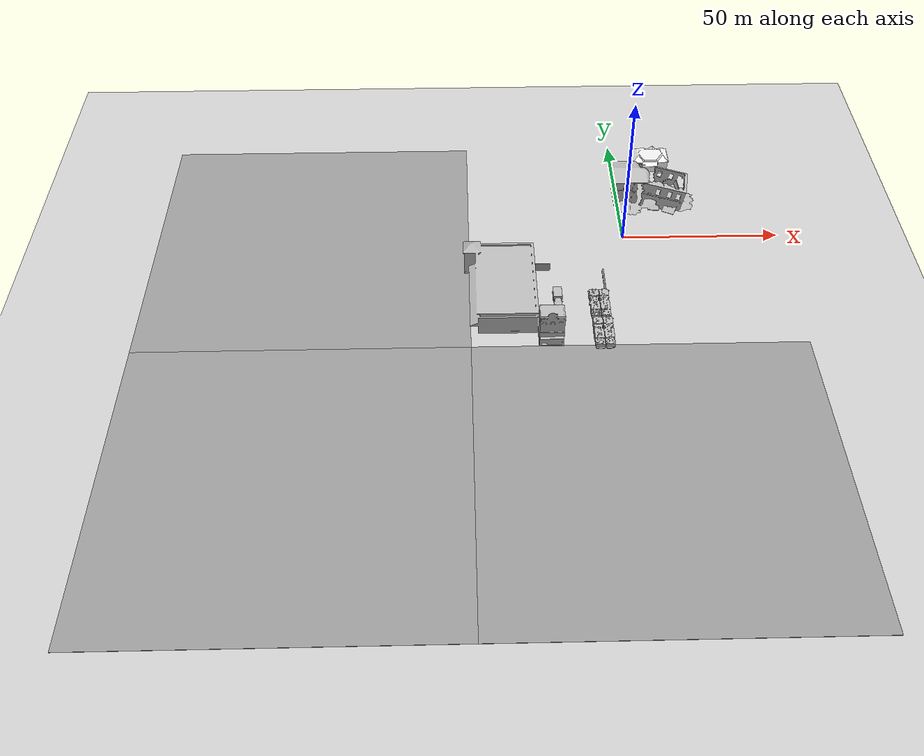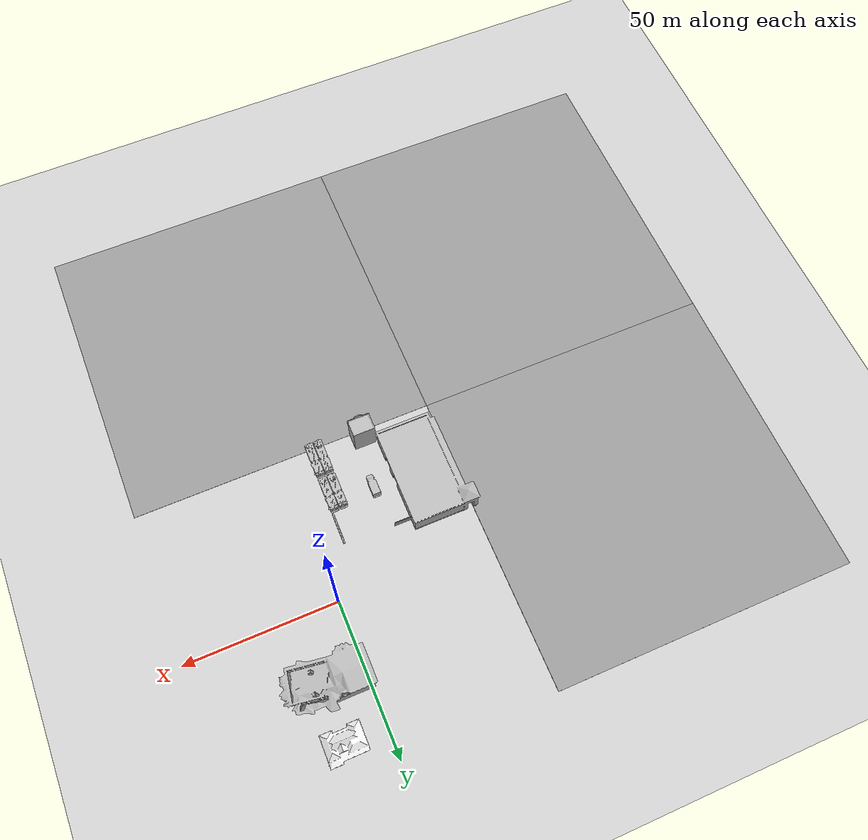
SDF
<sdf version="1.6">
 <world name="default">
  <light name="sun" type="directional">
   <pose>0 0 10 0 -0 0</pose>
   <diffuse>0.8 0.8 0.8 1</diffuse>
   <specular>0.2 0.2 0.2 1</specular>
   <attenuation>
    <range>1000</range>
    <constant>0.9</constant>
    <linear>0.01</linear>
    <quadratic>0.001</quadratic>
   </attenuation>
   <direction>-0.5 0.1 -0.9</direction>
  </light>
  <model name="ground_plane">
   <static>1</static>
   <link name="link">
    <collision name="collision">
     <geometry><plane><normal>0 0 1</normal><size>100 100</size></plane></geometry>
     <surface><friction><ode><mu>100</mu><mu2>50</mu2></ode></friction></surface>
    </collision>
    <visual name="visual">
     <cast_shadows>0</cast_shadows>
     <geometry><plane><normal>0 0 1</normal><size>100 100</size></plane></geometry>
     <material>
      <script><uri>file://media/materials/scripts/gazebo.material</uri><name>Gazebo/Grey</name></script>
     </material>
    </visual>
   </link>
  </model>
  <gravity>0 0 -9.8</gravity>
  <magnetic_field>6e-06 2.3e-05 -4.2e-05</magnetic_field>
  <atmosphere type="adiabatic"/>
  <physics name="default_physics" default="0" type="ode">
   <max_step_size>0.001</max_step_size>
   <real_time_factor>1</real_time_factor>
   <real_time_update_rate>1000</real_time_update_rate>
  </physics>
  <scene><ambient>0.4 0.4 0.4 1</ambient><background>0.7 0.7 0.7 1</background><shadows>1</shadows></scene>
  <audio><device>default</device></audio>
  <spherical_coordinates>
   <surface_model>EARTH_WGS84</surface_model>
   <latitude_deg>0</latitude_deg>
   <longitude_deg>0</longitude_deg>
   <elevation>0</elevation>
   <heading_deg>0</heading_deg>
  </spherical_coordinates>
  <model name="drc_practice_white_jersey_barrier">
   <static>1</static>
   <link name="link">
    <visual name="visual">
     <geometry>
      <mesh><uri>model://drc_practice_white_jersey_barrier/meshes/jersey_barrier.dae</uri></mesh>
     </geometry>
    </visual>
    <collision name="collision">
     <geometry>
      <mesh><uri>model://drc_practice_white_jersey_barrier/meshes/jersey_barrier.dae</uri></mesh>
     </geometry>
    </collision>
   </link>
   <pose>-8.1106 -17.4221 0 0 -0 0</pose>
  </model>
  <model name="drc_practice_white_jersey_barrier_0">
   <static>1</static>
   <link name="link">
    <visual name="visual">
     <geometry>
      <mesh><uri>model://drc_practice_white_jersey_barrier/meshes/jersey_barrier.dae</uri></mesh>
     </geometry>
    </visual>
    <collision name="collision">
     <geometry>
      <mesh><uri>model://drc_practice_white_jersey_barrier/meshes/jersey_barrier.dae</uri></mesh>
     </geometry>
    </collision>
   </link>
   <pose>-8.12131 -19.1623 0 0 -0 0</pose>
  </model>
  <model name="drc_practice_white_jersey_barrier_1">
   <static>1</static>
   <link name="link">
    <visual name="visual">
     <geometry>
      <mesh><uri>model://drc_practice_white_jersey_barrier/meshes/jersey_barrier.dae</uri></mesh>
     </geometry>
    </visual>
    <collision name="collision">
     <geometry>
      <mesh><uri>model://drc_practice_white_jersey_barrier/meshes/jersey_barrier.dae</uri></mesh>
     </geometry>
    </collision>
   </link>
   <pose>-8.12631 -20.9038 0 0 -0 0</pose>
  </model>
  <model name="drc_practice_white_jersey_barrier_2">
   <static>1</static>
   <link name="link">
    <visual name="visual">
     <geometry>
      <mesh><uri>model://drc_practice_white_jersey_barrier/meshes/jersey_barrier.dae</uri></mesh>
     </geometry>
    </visual>
    <collision name="collision">
     <geometry>
      <mesh><uri>model://drc_practice_white_jersey_barrier/meshes/jersey_barrier.dae</uri></mesh>
     </geometry>
    </collision>
   </link>
   <pose>-8.13689 -22.6437 0 0 -0 0</pose>
  </model>
  <model name="drc_practice_white_jersey_barrier_3">
   <static>1</static>
   <link name="link">
    <visual name="visual">
     <geometry>
      <mesh><uri>model://drc_practice_white_jersey_barrier/meshes/jersey_barrier.dae</uri></mesh>
     </geometry>
    </visual>
    <collision name="collision">
     <geometry>
      <mesh><uri>model://drc_practice_white_jersey_barrier/meshes/jersey_barrier.dae</uri></mesh>
     </geometry>
    </collision>
   </link>
   <pose>-8.14766 -24.3836 0 0 -0 0</pose>
  </model>
  <model name="drc_practice_white_jersey_barrier_4">
   <static>1</static>
   <link name="link">
    <visual name="visual">
     <geometry>
      <mesh><uri>model://drc_practice_white_jersey_barrier/meshes/jersey_barrier.dae</uri></mesh>
     </geometry>
    </visual>
    <collision name="collision">
     <geometry>
      <mesh><uri>model://drc_practice_white_jersey_barrier/meshes/jersey_barrier.dae</uri></mesh>
     </geometry>
    </collision>
   </link>
   <pose>-8.16728 -26.1237 0 0 -0 0</pose>
  </model>
  <model name="fire_truck">
   <static>1</static>
   <link name="link">
    <collision name="collision">
     <geometry>
      <mesh><scale>0.1 0.1 0.1</scale><uri>model://fire_truck/meshes/fire_truck.obj</uri></mesh>
     </geometry>
    </collision>
    <visual name="visual">
     <geometry>
      <mesh><scale>0.1 0.1 0.1</scale><uri>model://fire_truck/meshes/fire_truck.obj</uri></mesh>
     </geometry>
    </visual>
   </link>
   <pose>-9.1718 -32.9751 0 0 -0 0</pose>
  </model>
  <model name="fire_truck_0">
   <static>1</static>
   <link name="link">
    <collision name="collision">
     <geometry>
      <mesh><scale>0.1 0.1 0.1</scale><uri>model://fire_truck/meshes/fire_truck.obj</uri></mesh>
     </geometry>
    </collision>
    <visual name="visual">
     <geometry>
      <mesh><scale>0.1 0.1 0.1</scale><uri>model://fire_truck/meshes/fire_truck.obj</uri></mesh>
     </geometry>
    </visual>
   </link>
   <pose>-9.11782 -45.4082 0 0 -0 0</pose>
  </model>
  <model name="fire_truck_1">
   <static>1</static>
   <link name="link">
    <collision name="collision">
     <geometry>
      <mesh><scale>0.1 0.1 0.1</scale><uri>model://fire_truck/meshes/fire_truck.obj</uri></mesh>
     </geometry>
    </collision>
    <visual name="visual">
     <geometry>
      <mesh><scale>0.1 0.1 0.1</scale><uri>model://fire_truck/meshes/fire_truck.obj</uri></mesh>
     </geometry>
    </visual>
   </link>
   <pose>-12.1695 -33.0245 0 0 -0 0</pose>
  </model>
  <model name="fire_truck_2">
   <static>1</static>
   <link name="link">
    <collision name="collision">
     <geometry>
      <mesh><scale>0.1 0.1 0.1</scale><uri>model://fire_truck/meshes/fire_truck.obj</uri></mesh>
     </geometry>
    </collision>
    <visual name="visual">
     <geometry>
      <mesh><scale>0.1 0.1 0.1</scale><uri>model://fire_truck/meshes/fire_truck.obj</uri></mesh>
     </geometry>
    </visual>
   </link>
   <pose>-12.0992 -45.5171 0 0 -0 0</pose>
  </model>
  <model name="ground_plane_0">
   <static>1</static>
   <link name="link">
    <collision name="collision">
     <geometry><plane><normal>0 0 1</normal><size>100 100</size></plane></geometry>
     <surface><friction><ode><mu>100</mu><mu2>50</mu2></ode></friction></surface>
    </collision>
    <visual name="visual">
     <cast_shadows>0</cast_shadows>
     <geometry><plane><normal>0 0 1</normal><size>100 100</size></plane></geometry>
     <material>
      <script><uri>file://media/materials/scripts/gazebo.material</uri><name>Gazebo/Grey</name></script>
     </material>
    </visual>
   </link>
   <pose>0 -100 0 0 -0 0</pose>
  </model>
  <model name="ground_plane_1">
   <static>1</static>
   <link name="link">
    <collision name="collision">
     <geometry><plane><normal>0 0 1</normal><size>100 100</size></plane></geometry>
     <surface><friction><ode><mu>100</mu><mu2>50</mu2></ode></friction></surface>
    </collision>
    <visual name="visual">
     <cast_shadows>0</cast_shadows>
     <geometry><plane><normal>0 0 1</normal><size>100 100</size></plane></geometry>
     <material>
      <script><uri>file://media/materials/scripts/gazebo.material</uri><name>Gazebo/Grey</name></script>
     </material>
    </visual>
   </link>
   <pose>-100 -100 0 0 -0 0</pose>
  </model>
  <model name="ground_plane_2">
   <static>1</static>
   <link name="link">
    <collision name="collision">
     <geometry><plane><normal>0 0 1</normal><size>100 100</size></plane></geometry>
     <surface><friction><ode><mu>100</mu><mu2>50</mu2></ode></friction></surface>
    </collision>
    <visual name="visual">
     <cast_shadows>0</cast_shadows>
     <geometry><plane><normal>0 0 1</normal><size>100 100</size></plane></geometry>
     <material>
      <script><uri>file://media/materials/scripts/gazebo.material</uri><name>Gazebo/Grey</name></script>
     </material>
    </visual>
   </link>
   <pose>-100 0 0 0 -0 0</pose>
  </model>
  <model name="grey_wall">
   <static>1</static>
   <link name="link">
    <pose>0 0 1.4 0 -0 0</pose>
    <collision name="collision"><geometry><box><size>7.5 0.2 2.8</size></box></geometry></collision>
    <visual name="visual">
     <cast_shadows>0</cast_shadows>
     <geometry><box><size>7.5 0.2 2.8</size></box></geometry>
     <material>
      <script>
       <uri>model://grey_wall/materials/scripts</uri>
       <uri>model://grey_wall/materials/textures</uri>
       <name>vrc/grey_wall</name>
      </script>
     </material>
    </visual>
   </link>
   <pose>-28.4954 -15.7859 0 0 -0 0</pose>
  </model>
  <model name="grocery_store">
   <static>1</static>
   <link name="link">
    <collision name="collision">
     <pose>0 0 4.04605 0 -0 0</pose>
     <geometry><box><size>32.1985 17.5425 8.09209</size></box></geometry>
    </collision>
    <visual name="visual">
     <pose>0 -1.96155 0 0 -0 0</pose>
     <geometry><mesh><uri>model://grocery_store/meshes/grocery_store.dae</uri></mesh></geometry>
    </visual>
   </link>
   <pose>-39.0183 -28.1495 0 0 -0 1.57</pose>
  </model>
  <model name="thrift_shop">
   <static>1</static>
   <link name="link">
    <collision name="collision">
     <pose>0 0 5.69469 0 -0 0</pose>
     <geometry><box><size>7.21297 5.43165 11.3894</size></box></geometry>
    </collision>
    <visual name="visual">
     <pose>0 -0.912491 0 0 -0 0</pose>
     <geometry><mesh><uri>model://thrift_shop/meshes/thrift_shop.dae</uri></mesh></geometry>
    </visual>
   </link>
   <pose>-26.3686 -47.272 0 0 -0 0</pose>
  </model>
  <model name="ambulance">
   <static>1</static>
   <link name="link">
    <collision name="collision">
     <geometry>
      <mesh><scale>0.0254 0.0254 0.0254</scale><uri>model://ambulance/meshes/ambulance.obj</uri></mesh>
     </geometry>
    </collision>
    <visual name="visual">
     <geometry>
      <mesh><scale>0.0254 0.0254 0.0254</scale><uri>model://ambulance/meshes/ambulance.obj</uri></mesh>
     </geometry>
    </visual>
   </link>
   <pose>-23.2976 -30.3187 0 0 -0 0</pose>
  </model>
  <model name="collapsed_fire_station">
   <static>1</static>
   <link name="link">
    <collision name="collision">
     <geometry><mesh><uri>model://collapsed_fire_station/meshes/collapsed_fire_station.dae</uri></mesh></geometry>
    </collision>
    <visual name="visual">
     <geometry><mesh><uri>model://collapsed_fire_station/meshes/collapsed_fire_station.dae</uri></mesh></geometry>
    </visual>
   </link>
   <pose>12.1215 20.7731 0 0 -0 0</pose>
  </model>
  <model name="House 2">
   <static>1</static>
   <link name="link">
    <collision name="collision">
     <geometry><mesh><uri>model://house_2/meshes/house_2.dae</uri><scale>1.5 1.5 1.5</scale></mesh></geometry>
    </collision>
    <visual name="visual">
     <geometry><mesh><uri>model://house_2/meshes/house_2.dae</uri><scale>1.5 1.5 1.5</scale></mesh></geometry>
     <material>
      <script>
       <uri>model://house_2/materials/scripts</uri>
       <uri>model://house_2/materials/textures</uri>
       <uri>model://house_1/materials/textures</uri>
       <name>House_2/Diffuse</name>
      </script>
      <shader type="normal_map_tangent_space">
       <normal_map>model://house_1/materials/textures/House_1_Normal.png</normal_map>
      </shader>
     </material>
    </visual>
   </link>
   <pose>12.0569 39.0785 0 0 -0 0</pose>
  </model>
 </world>
</sdf>
